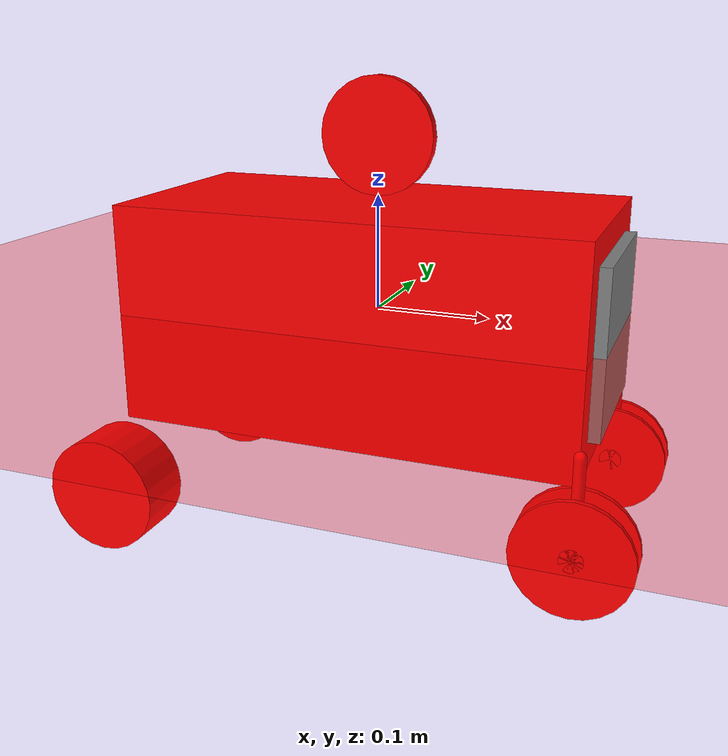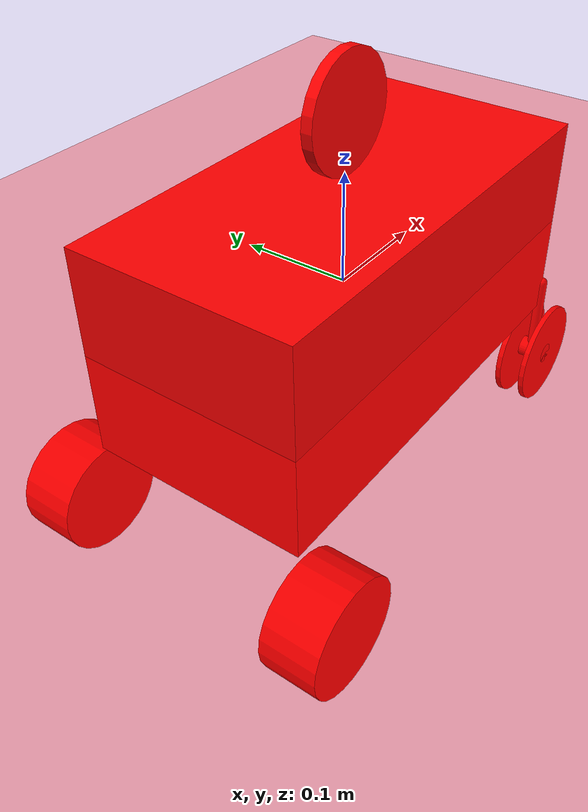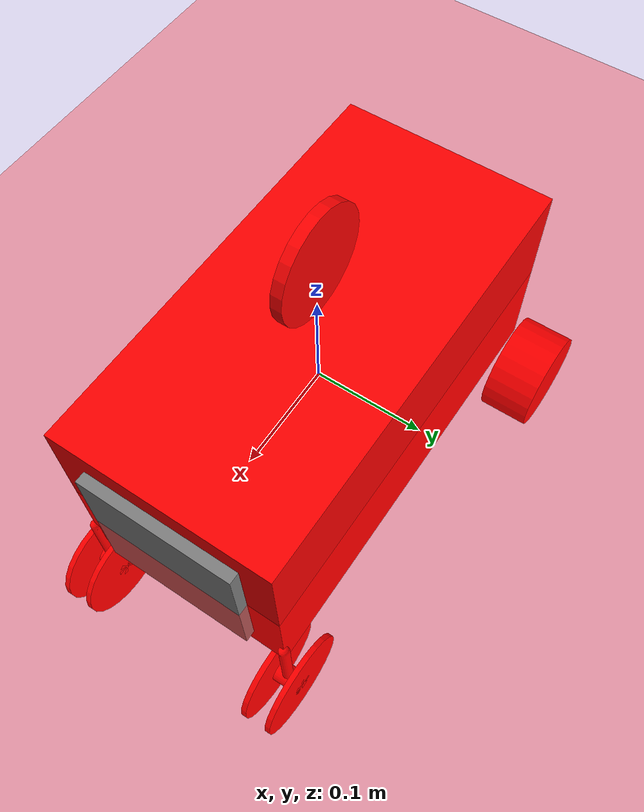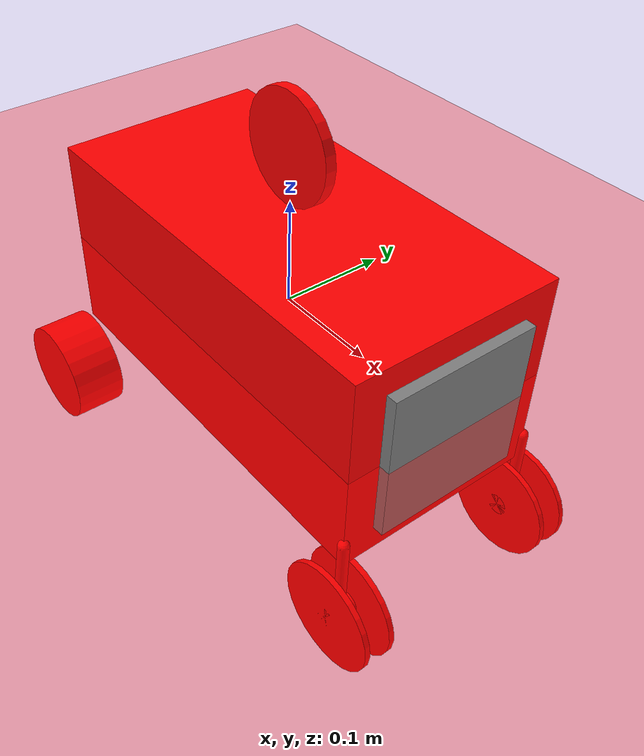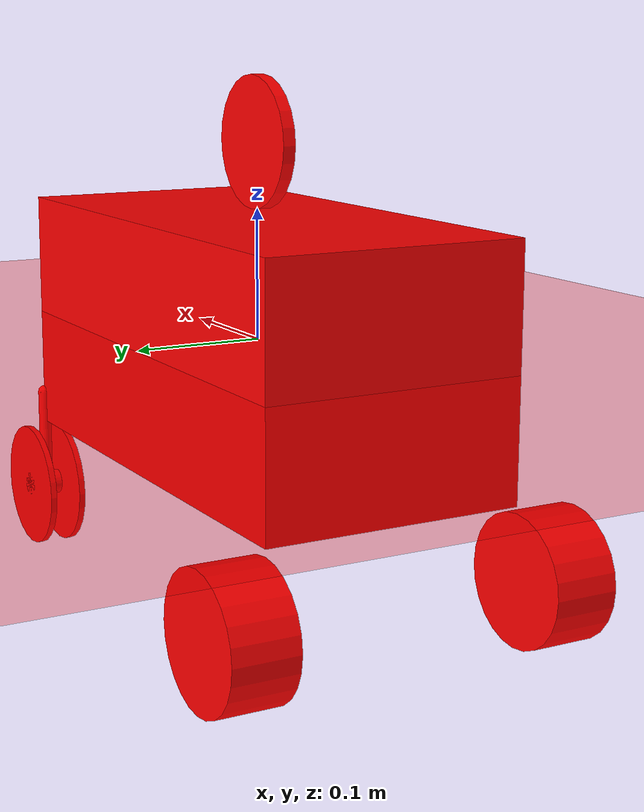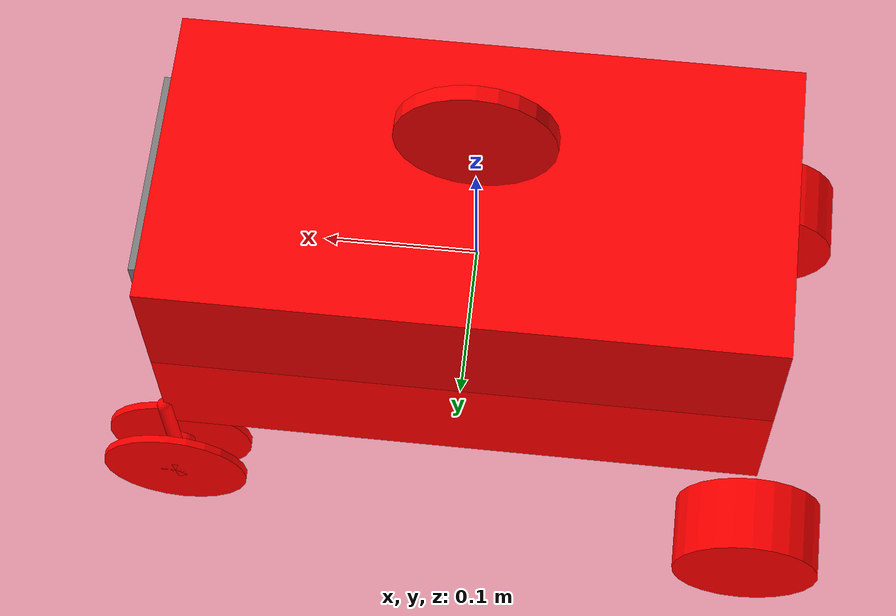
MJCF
<mujoco>
    <size njmax="3000" nconmax="1000"/>
    <option timestep="0.02"/>
    <default>
        <geom condim="6" density="40" rgba="1 0 0 1" size=".05" type="sphere"/>
        <joint damping=".001"/>
        <site size="0.032" type="sphere"/>
    </default>

    <default class="acker_solver_param">
    <!--solver impedance and reference(?) for ackerman equality constraint-->
    <!--default solimp: "0.900 0.950 0.001"-->
    <!--default solref: "0.020 1.000"-->
    <!--solref: (timeconst, dampratio)
        b = 2 / (dmax * timeconst)
        k = d(r) / (dmax * dmax * timeconst * timeconst * dampratio * dampratio)
    -->
        <equality solimp="0.9950 0.9990 0.0001" solref="0.0100 0.7500"/>
    </default>

    <worldbody>
        <geom name="floor" size="5 5 0.1" type="plane" condim="6"/>
        <body name="robot" pos="0 0 0">
            <site name="robot" pos="0 0 0"/>
            <camera name="vision" pos="0 0.1 .2" xyaxes="-1 0 0 0 -.4 1"/>
            <joint type="free" name="robot" damping="0"/>
            <geom name="rover-body" type="box" pos="0 0 0" size="0.2 0.1 .095" mass="12" />
            <site type="box" size=".01 .07 .07" pos=".2 0 0"/>
            <body name="r-l-wheel" pos="-0.2 0.1 -0.15">
                <joint name="r-l-drive-hinge" type="hinge" pos="0 0 0" axis="0 1 0" damping="0.01" />
                <geom type="cylinder" size=".05" fromto="0 0 0 0 0.05 0" mass=".125" condim="4"/>
            </body>
            <body name="r-r-wheel" pos="-0.2 -0.1 -0.15">
                <joint name="r-r-drive-hinge" type="hinge" pos="0 0 0" axis="0 1 0" damping="0.01"/>
                <geom type="cylinder" size=".05" fromto="0 0 0 0 -0.05 0" mass=".125" condim="4"/>
            </body>
            <body name="ghost-steer-wheel" pos="0 0 .15">
                <joint name="ghost-steer-hinge" type="hinge" pos="0 0 0" axis="0 0 1" limited="true" range="-30 30" damping="0"/>
                <geom type="cylinder" size=".05 .005" axisangle="1 0 0 90" contype="2" conaffinity="2" mass="0.002"/>
            </body>
            <body name="f-l-wheel" pos=".2 0.1 -.15">
                <geom type="capsule" size = ".005" fromto="0 0 0 0 0 .08" contype="2" conaffinity="2"/>
                <joint name="f-l-steer-hinge" type="hinge" pos="0 0 0" axis="0 0 1" damping="0.01" limited="true" range="-40 40"/>
                <body>
                    <geom type="cylinder" size=".01" fromto="0 -.015 0 0 0.015 0" mass=".125" />
                    <body>
                        <joint name="f-l-drive-hinge-1" type="hinge" pos="0 0 0" axis="0 1 0" damping="0.01"/>
                        <geom type="cylinder" size=".05" fromto="0 -.015 0 0 -0.010 0" mass=".125" condim="4"/>
                    </body>
                    <body>
                        <joint name="f-l-drive-hinge-2" type="hinge" pos="0 0 0" axis="0 1 0" damping="0.01"/>
                        <geom type="cylinder" size=".05" fromto="0 .010 0 0 0.015 0" mass=".125" condim="4"/>
                    </body>
                </body>
            </body>
            <body name="f-r-wheel" pos=".2 -0.1 -.15">
                <geom type="capsule" size = ".005" fromto="0 0 0 0 0 .08" contype="2" conaffinity="2"/>
                <joint name="f-r-steer-hinge" type="hinge" pos="0 0 0" axis="0 0 1" damping="0.01" limited="true" range="-40 40"/>
                <body>
                    <geom type="cylinder" size=".01" fromto="0 -.015 0 0 0.015 0" mass=".125" />
                    <body>
                        <joint name="f-l-drive-hinge-3" type="hinge" pos="0 0 0" axis="0 1 0" damping="0.01"/>
                        <geom type="cylinder" size=".05" fromto="0 -.015 0 0 -0.010 0" mass=".125" condim="4"/>
                    </body>
                    <body>
                        <joint name="f-l-drive-hinge-4" type="hinge" pos="0 0 0" axis="0 1 0" damping="0.01"/>
                        <geom type="cylinder" size=".05" fromto="0 .010 0 0 0.015 0" mass=".125" condim="4"/>
                    </body>
                </body>
            </body>
        </body>
    </worldbody>

    <tendon>
        <fixed name="rear-differential">
            <joint joint="r-l-drive-hinge" coef="1"/>
            <joint joint="r-r-drive-hinge" coef="1"/>
        </fixed>
    </tendon>

    <sensor>

        <!-- Used for observation -->
        <accelerometer site="robot" name="accelerometer"/>
        <velocimeter site="robot" name="velocimeter"/>
        <gyro site="robot" name="gyro"/>
        <magnetometer site="robot" name="magnetometer"/>

        <!-- Used for intrinsic constraints -->
        <subtreecom body="robot" name="subtreecom"/>
        <subtreelinvel body="robot" name="subtreelinvel"/>
        <subtreeangmom body="robot" name="subtreeangmom"/>
    </sensor>

    <actuator>
        <position name="ghost-steer" joint="ghost-steer-hinge" ctrllimited="true" ctrlrange="-.6 .6" gear="1"/>
        <motor name="drive" tendon="rear-differential" ctrllimited="true" ctrlrange="-1.0 1.0" gear="1" forcerange="-1 1" forcelimited="true"/>
    </actuator>

    <equality>
        <joint name="f-l-steer-hinge" joint1="f-l-steer-hinge" joint2="ghost-steer-hinge" polycoef="0.000093610018132620019 2.0041497325730204 1.4716131190668178 -1.0929725380842041 -3.2252012765547819" class="acker_solver_param"/>
        <joint name="f-r-steer-hinge" joint1="f-r-steer-hinge" joint2="ghost-steer-hinge" polycoef="-0.00017013070152971507 2.0039379507086514 -1.4684576386267671 -1.0901354124362155 3.1974185558159771" class="acker_solver_param"/>
    </equality>
</mujoco>
